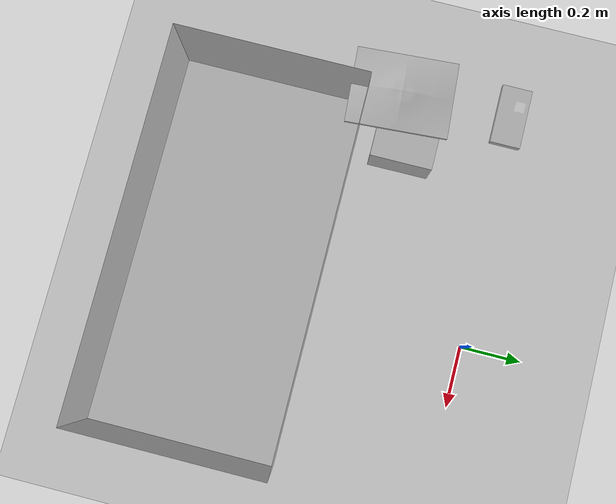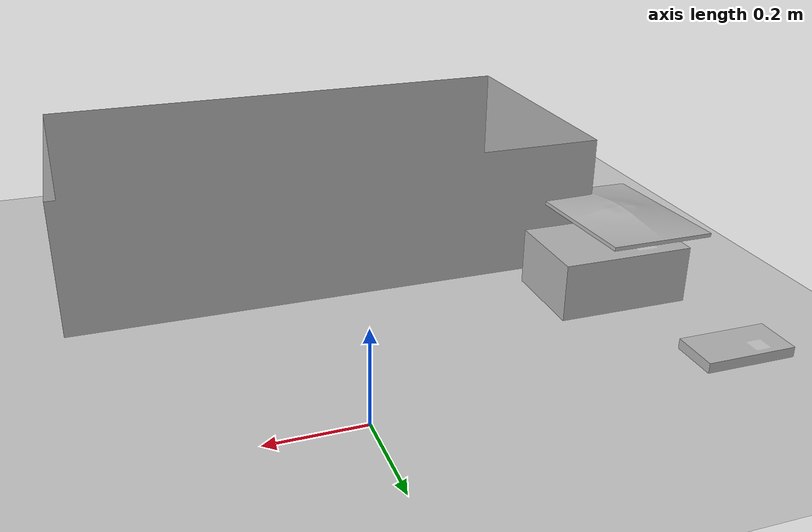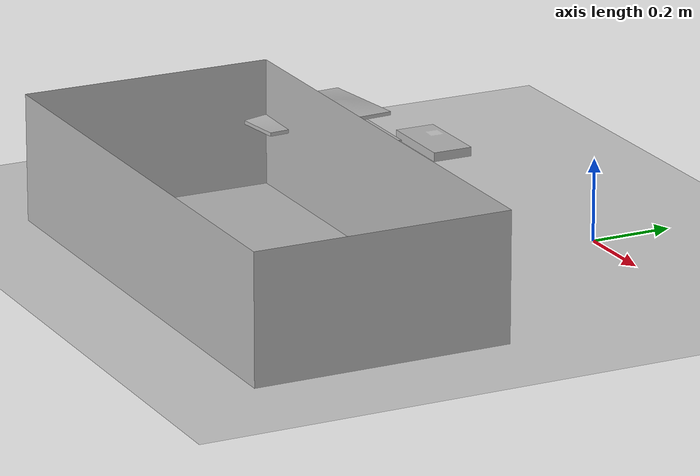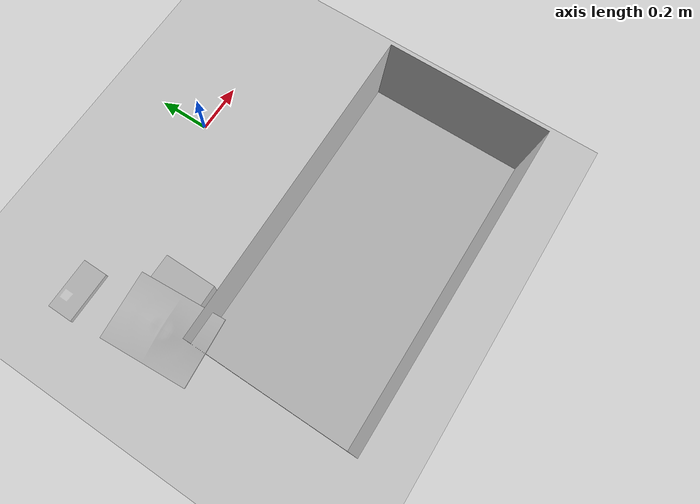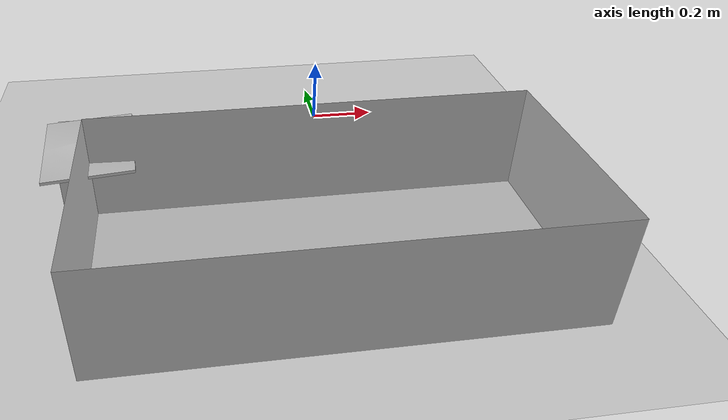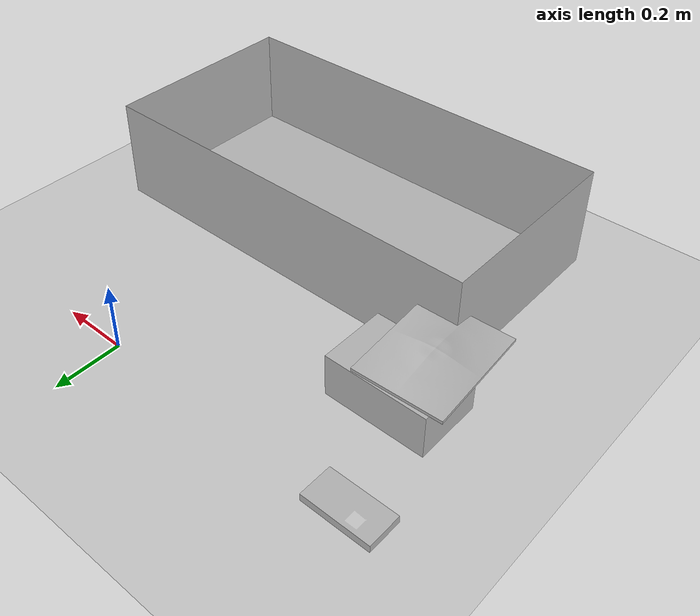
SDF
<sdf version="1.7">
 <world name="default">
  <light name="sun" type="directional">
   <pose>0 0 10 0 -0 0</pose>
   <diffuse>0.8 0.8 0.8 1</diffuse>
   <specular>0.2 0.2 0.2 1</specular>
   <attenuation>
    <range>1000</range>
    <constant>0.9</constant>
    <linear>0.01</linear>
    <quadratic>0.001</quadratic>
   </attenuation>
   <direction>-0.5 0.1 -0.9</direction>
   <spot><inner_angle>0</inner_angle><outer_angle>0</outer_angle><falloff>0</falloff></spot>
  </light>
  <model name="ground_plane">
   <static>1</static>
   <link name="link">
    <collision name="collision">
     <geometry><plane><normal>0 0 1</normal><size>100 100</size></plane></geometry>
     <surface><friction><ode><mu>100</mu><mu2>50</mu2></ode></friction></surface>
    </collision>
    <visual name="visual">
     <cast_shadows>0</cast_shadows>
     <geometry><plane><normal>0 0 1</normal><size>100 100</size></plane></geometry>
     <material>
      <script><uri>file://media/materials/scripts/gazebo.material</uri><name>Gazebo/Grey</name></script>
     </material>
    </visual>
   </link>
  </model>
  <gravity>0 0 -9.8</gravity>
  <magnetic_field>6e-06 2.3e-05 -4.2e-05</magnetic_field>
  <atmosphere type="adiabatic"/>
  <physics type="ode">
   <max_step_size>0.001</max_step_size>
   <real_time_factor>1</real_time_factor>
   <real_time_update_rate>1000</real_time_update_rate>
  </physics>
  <scene><ambient>0.4 0.4 0.4 1</ambient><background>0.7 0.7 0.7 1</background><shadows>1</shadows></scene>
  <spherical_coordinates>
   <surface_model>EARTH_WGS84</surface_model>
   <latitude_deg>0</latitude_deg>
   <longitude_deg>0</longitude_deg>
   <elevation>0</elevation>
   <heading_deg>0</heading_deg>
  </spherical_coordinates>
  <model name="trolley">
   <static>1</static>
   <link name="link">
    <inertial>
     <mass>10</mass>
     <inertia><ixy>0</ixy><ixz>0</ixz><iyz>0</iyz><ixx>0.05288</ixx><iyy>0.05288</iyy><izz>0.09132</izz></inertia>
    </inertial>
    <collision name="collision">
     <geometry><mesh><uri>model://trolley/meshes/trolley.dae</uri></mesh></geometry>
    </collision>
    <visual name="visual">
     <geometry><mesh><uri>model://trolley/meshes/trolley.dae</uri><scale>1 1 1</scale></mesh></geometry>
     <meta><layer>1</layer></meta>
    </visual>
   </link>
   <pose>-0.036294 -0.805728 0.154822 0 0.000575 1.5708</pose>
  </model>
  <model name="flyer_box_1">
   <link name="link">
    <inertial>
     <mass>1</mass>
     <inertia><ixy>0</ixy><ixz>0</ixz><iyz>0</iyz><ixx>0.05288</ixx><iyy>0.05288</iyy><izz>0.09132</izz></inertia>
    </inertial>
    <collision name="collision">
     <geometry><mesh><uri>model://flyer_boxes/meshes/flyer.dae</uri></mesh></geometry>
    </collision>
    <visual name="visual">
     <geometry><mesh><uri>model://flyer_boxes/meshes/flyer.dae</uri><scale>1 1 1</scale></mesh></geometry>
     <meta><layer>1</layer></meta>
    </visual>
   </link>
   <pose>-0.94275 -0.26407 0.019949 -3.10635 0 -1.50427</pose>
  </model>
  <model name="small_box_1">
   <link name="link">
    <inertial>
     <mass>1</mass>
     <inertia><ixy>0</ixy><ixz>0</ixz><iyz>0</iyz><ixx>0.05288</ixx><iyy>0.05288</iyy><izz>0.09132</izz></inertia>
    </inertial>
    <collision name="collision">
     <geometry><mesh><uri>model://small_boxes/meshes/small_box.dae</uri></mesh></geometry>
    </collision>
    <visual name="visual">
     <geometry><mesh><uri>model://small_boxes/meshes/small_box.dae</uri><scale>1 1 1</scale></mesh></geometry>
     <meta><layer>1</layer></meta>
    </visual>
   </link>
   <pose>-0.987784 0.272689 0.043952 -1e-06 -2e-06 9e-06</pose>
  </model>
  <model name="medium_box_1">
   <link name="link">
    <inertial>
     <mass>1</mass>
     <inertia><ixy>0</ixy><ixz>0</ixz><iyz>0</iyz><ixx>0.05288</ixx><iyy>0.05288</iyy><izz>0.09132</izz></inertia>
    </inertial>
    <collision name="collision">
     <geometry><mesh><uri>model://medium_boxes/meshes/medium_box.dae</uri></mesh></geometry>
    </collision>
    <visual name="visual">
     <geometry><mesh><uri>model://medium_boxes/meshes/medium_box.dae</uri><scale>1 1 1</scale></mesh></geometry>
     <meta><layer>1</layer></meta>
    </visual>
   </link>
   <pose>-0.82263 0.110266 0.110065 7e-06 9e-06 0</pose>
  </model>
 </world>
</sdf>
